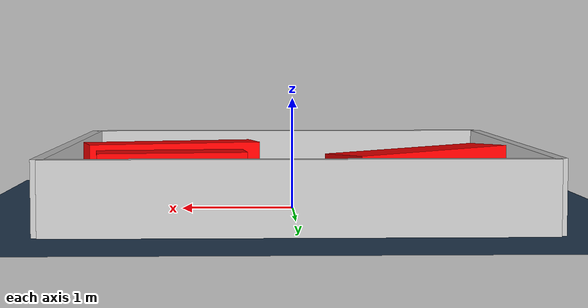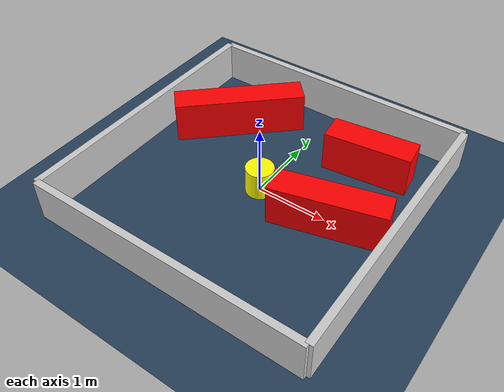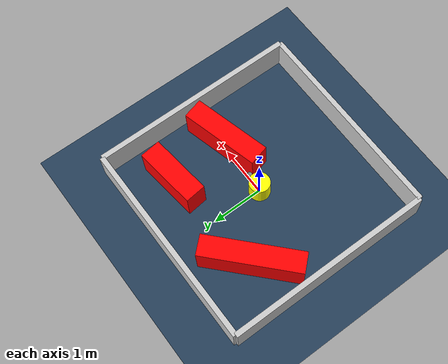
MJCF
<?xml version="1.0" ?>
<mujoco model="generated_environment">
  <option timestep="0.01" integrator="RK4" cone="elliptic"/>
  <default>
    <geom density="1"/>
  </default>
  <asset>
    <texture builtin="gradient" height="3072" rgb1="0.3 0.5 0.7" rgb2="0 0 0" type="skybox" width="512"/>
    <texture builtin="checker" height="300" mark="edge" markrgb="0.8 0.8 0.8" name="groundplane" rgb1="0.2 0.3 0.4" rgb2="0.1 0.2 0.3" type="2d" width="300"/>
    <material name="groundplane" reflectance="0.2" texrepeat="5 5" texture="groundplane" texuniform="true"/>
    <material name="robot" rgba="0.0 1.0 0.0 1"/>
  </asset>
  <worldbody>
    <light dir="0 0 -1" directional="true" pos="0 0 1.5"/>
    <geom condim="4" friction="1.0 0.005 0.001" material="groundplane" name="floor" size="0 0 0.05" type="plane"/>
    <body name="walls">
      <geom name="wall_1" condim="4" pos="-2.0 0.0 0.3" rgba="0.800000011920929 0.800000011920929 0.800000011920929 1.0" size="0.05 2.0 0.3" type="box"/>
      <geom name="wall_2" condim="4" pos="2.0 0.0 0.3" rgba="0.800000011920929 0.800000011920929 0.800000011920929 1.0" size="0.05 2.0 0.3" type="box"/>
      <geom name="wall_3" condim="4" pos="0.0 -2.0 0.3" rgba="0.800000011920929 0.800000011920929 0.800000011920929 1.0" size="2.0 0.05 0.3" type="box"/>
      <geom name="wall_4" condim="4" pos="0.0 2.0 0.3" rgba="0.800000011920929 0.800000011920929 0.800000011920929 1.0" size="2.0 0.05 0.3" type="box"/>
    </body>
    <body name="robot">
      <joint name="joint_x" type="slide" pos="0 0 0" axis="1 0 0"/>
      <joint name="joint_y" type="slide" pos="0 0 0" axis="0 1 0"/>
      <geom name="robot" type="sphere" pos="0.3 0.0 0.2" size="0.05" mass="5." friction="1.0 0.005 0.0001" condim="4" rgba="0.5 0.5 0.5 1.0"/>
      <site name="sensor_ball"/>
    </body>
    <body name="obstacle_movable_1">
      <geom name="obstacle_movable_1" condim="4" pos="0.0 0.0 0.2" euler="0 0 0.0" friction="1.0 0.005 0.001" rgba="1.0 1.0 0.0 1.0" size="0.2 0.2 0.0" type="cylinder" mass="0.1"/>
      <joint type="free"/>
    </body>
    <body name="obstacle_2_static">
      <geom name="obstacle_2_static" condim="4" pos="-1.045592510049841 0.9504478309086763 0.3" euler="0 0 222.94204182397127" friction="1.0 0.005 0.001" rgba="1 0 0 1" size="0.9412644482608457 0.2 0.3" type="box"/>
    </body>
    <body name="obstacle_3_static">
      <geom name="obstacle_3_static" condim="4" pos="1.1013557922726958 -0.06116275438765251 0.3" euler="0 0 194.7000555894385" friction="1.0 0.005 0.001" rgba="1 0 0 1" size="0.7764821424813279 0.2 0.3" type="box"/>
    </body>
    <body name="obstacle_4_static">
      <geom name="obstacle_4_static" condim="4" pos="1.0318080266502534 1.1465535047135227 0.3" euler="0 0 6.762258852819714" friction="1.0 0.005 0.001" rgba="1 0 0 1" size="0.6097075920382925 0.2 0.3" type="box"/>
    </body>
  </worldbody>
  <actuator>
    <motor name="actuator_x" joint="joint_x" gear="1" ctrlrange="-1 1"/>
    <motor name="actuator_y" joint="joint_y" gear="1" ctrlrange="-1 1"/>
  </actuator>
</mujoco>
